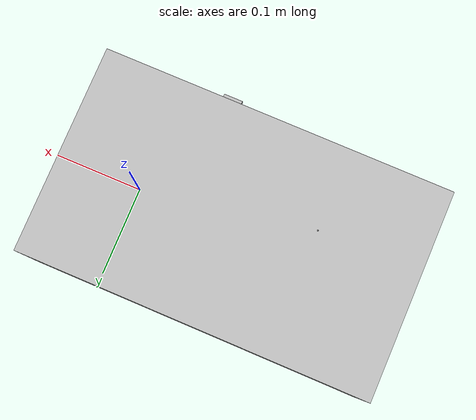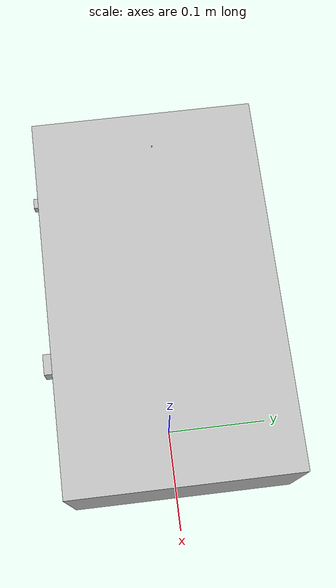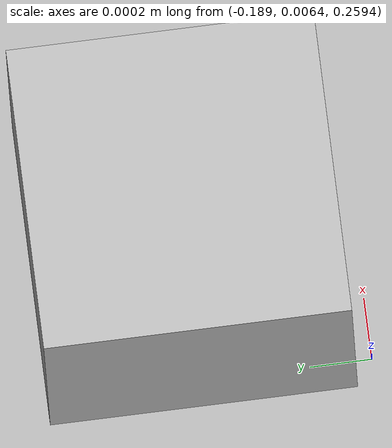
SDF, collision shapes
<?xml version='1.0'?>
<sdf version='1.6'>
  <model name='dr_drift'>
    <link name='chassis'>
      <pose frame=''>0 0 0.06 0 0 0</pose>
      <visual name='visual'>
        <pose frame=''>0 0 0 0 -0 0</pose>
        <geometry>
          <mesh>
            <uri>file://media/dr_drift.stl</uri>
            <scale>1 1 1</scale>
          </mesh>
        </geometry>
      </visual>
      <collision name='collision'>
        <geometry>
          <box>
            <size>0.368 0.218 0.12</size>
          </box>
        </geometry>
      </collision>
    </link>
    <link name='camera_ros::link'>
      <inertial>
        <mass>0.1</mass>
        <inertia>
          <ixx>0.000166667</ixx>
          <iyy>0.000166667</iyy>
          <izz>0.000166667</izz>
          <ixy>0</ixy>
          <ixz>0</ixz>
          <iyz>0</iyz>
        </inertia>
      </inertial>
      <collision name='collision'>
        <geometry>
          <box>
            <size>0.001 0.001 0.001</size>
          </box>
        </geometry>
      </collision>
      <visual name='visual'>
        <geometry>
          <box>
            <size>0.07 0.03 0.03</size>
          </box>
        </geometry>
      </visual>
      <sensor name='camera' type='camera'>
        <camera name='__default__'>
          <horizontal_fov>2.0769</horizontal_fov>
          <image>
            <width>1280</width>
            <height>1024</height>
            <format>RGB8</format>
          </image>
          <clip>
            <near>0.1</near>
            <far>20</far>
          </clip>
        </camera>
        <plugin name='camera_plugin' filename='libgazebo_ros_camera.so'>
          <alwaysOn>1</alwaysOn>
          <updateRate>0.0</updateRate>
          <imageTopicName>/camera/image_uncropped_raw</imageTopicName>
          <pointCloudTopicName>points</pointCloudTopicName>
          <cameraInfoTopicName>/camera/camera_info</cameraInfoTopicName>
          <frameName>world</frameName>
          <pointCloudCutoff>0.5</pointCloudCutoff>
          <distortion_k1>0.0</distortion_k1>
          <distortion_k2>0.0</distortion_k2>
          <distortion_k3>0.0</distortion_k3>
          <distortion_t1>0.0</distortion_t1>
          <distortion_t2>0.0</distortion_t2>
        </plugin>
        <always_on>1</always_on>
        <update_rate>60</update_rate>
        <visualize>1</visualize>
      </sensor>
      <pose frame=''>-0.071762 0 0.26 0 0.161 0</pose>
    </link>
    <joint name='camera_joint' type='fixed'>
      <child>camera_ros::link</child>
      <parent>chassis</parent>
    </joint>
    <link name='depth_camera_ros::link_back'>
      <inertial>
        <mass>0.1</mass>
      </inertial>
      <collision name="collision">
        <geometry>
          <box>
            <size>0.01 0.01 0.01</size>
          </box>
        </geometry>
      </collision>
      <visual name="visual">
        <geometry>
          <box>
          <size>0.02 0.02 0.02</size>
          </box>
        </geometry>
      </visual>
      <sensor name="camera" type="depth">
        <update_rate>20</update_rate>
        <camera>
          <horizontal_fov>0.436</horizontal_fov> <!-- 25 degrees -->
          <image>
            <width>10</width>
            <height>10</height>
            <format>L8</format>
          </image>
          <clip>
            <near>0.01</near>
            <far>2</far>
          </clip>
        </camera>
        <plugin name="camera_plugin" filename="libgazebo_ros_openni_kinect.so">
          <baseline>0.2</baseline>
          <alwaysOn>true</alwaysOn>
          <updateRate>0.0</updateRate>
          <cameraName>camera_ir</cameraName>
          <imageTopicName>/camera/depth_raw/back</imageTopicName>
          <cameraInfoTopicName>/camera/depth_raw/back_info</cameraInfoTopicName>
          <depthImageTopicName>/camera/depth_raw/back</depthImageTopicName>
          <depthImageInfoTopicName>/camera/depth_raw/back_info</depthImageInfoTopicName>
          <pointCloudTopicName>/camera/depth_raw/back_points</pointCloudTopicName>
          <frameName>ir_back</frameName>
          <pointCloudCutoff>0.005</pointCloudCutoff>
          <distortionK1>0</distortionK1>
          <distortionK2>0</distortionK2>
          <distortionK3>0</distortionK3>
          <distortionT1>0</distortionT1>
          <distortionT2>0</distortionT2>
          <CxPrime>0</CxPrime>
          <Cx>0</Cx>
          <Cy>0</Cy>
          <focalLength>0</focalLength>
          <hackBaseline>0</hackBaseline>
        </plugin>
      </sensor>
      <pose frame=''>-0.116762 -0.112 0.08 0 0 -1.570796 </pose>
    </link>
    <joint name='depth_camera_joint_back' type='fixed'>
      <child>depth_camera_ros::link_back</child>
      <parent>chassis</parent>
    </joint>
    <link name='depth_camera_ros::link_middle'>
      <inertial>
        <mass>0.1</mass>
      </inertial>
      <collision name="collision">
        <geometry>
          <box>
            <size>0.01 0.01 0.01</size>
          </box>
        </geometry>
      </collision>
      <visual name="visual">
        <geometry>
          <box>
          <size>0.02 0.02 0.02</size>
          </box>
        </geometry>
      </visual>
      <sensor name="camera" type="depth">
        <update_rate>20</update_rate>
        <camera>
          <horizontal_fov>0.436</horizontal_fov> <!-- 25 degrees -->
          <image>
            <width>10</width>
            <height>10</height>
            <format>L8</format>
          </image>
          <clip>
            <near>0.01</near>
            <far>2</far>
          </clip>
        </camera>
        <plugin name="camera_plugin" filename="libgazebo_ros_openni_kinect.so">
          <baseline>0.2</baseline>
          <alwaysOn>true</alwaysOn>
          <updateRate>0.0</updateRate>
          <cameraName>camera_ir</cameraName>
          <imageTopicName>/camera/depth_raw/middle</imageTopicName>
          <cameraInfoTopicName>/camera/depth_raw/middle_info</cameraInfoTopicName>
          <depthImageTopicName>/camera/depth_raw/middle</depthImageTopicName>
          <depthImageInfoTopicName>/camera/depth_raw/middle_info</depthImageInfoTopicName>
          <pointCloudTopicName>/camera/depth_raw/middle_points</pointCloudTopicName>
          <frameName>ir_middle</frameName>
          <pointCloudCutoff>0.005</pointCloudCutoff>
          <distortionK1>0</distortionK1>
          <distortionK2>0</distortionK2>
          <distortionK3>0</distortionK3>
          <distortionT1>0</distortionT1>
          <distortionT2>0</distortionT2>
          <CxPrime>0</CxPrime>
          <Cx>0</Cx>
          <Cy>0</Cy>
          <focalLength>0</focalLength>
          <hackBaseline>0</hackBaseline>
        </plugin>
      </sensor>
      <pose frame=''>-0.011762 -0.10 0.08 0 0 -1.570796 </pose>
    </link>
    <joint name='depth_camera_joint_middle' type='fixed'>
      <child>depth_camera_ros::link_middle</child>
      <parent>chassis</parent>
    </joint>
    <link name='depth_camera_ros::link_front'>
      <inertial>
        <mass>0.1</mass>
      </inertial>
      <collision name="collision">
        <geometry>
          <box>
            <size>0.02 0.02 0.02</size>
          </box>
        </geometry>
      </collision>
      <visual name="visual">
        <geometry>
          <box>
          <size>0.02 0.02 0.02</size>
          </box>
        </geometry>
      </visual>
      <sensor name="camera" type="depth">
        <update_rate>20</update_rate>
        <camera>
          <horizontal_fov>0.436</horizontal_fov> <!-- 25 degrees -->
          <image>
            <width>10</width>
            <height>10</height>
            <format>L8</format>
          </image>
          <clip>
            <near>0.001</near>
            <far>2</far>
          </clip>
        </camera>
        <plugin name="camera_plugin" filename="libgazebo_ros_openni_kinect.so">
          <baseline>0.2</baseline>
          <alwaysOn>true</alwaysOn>
          <updateRate>0.0</updateRate>
          <cameraName>camera_ir</cameraName>
          <imageTopicName>/camera/depth_raw/front</imageTopicName>
          <cameraInfoTopicName>/camera/depth_raw/front_info</cameraInfoTopicName>
          <depthImageTopicName>/camera/depth_raw/front</depthImageTopicName>
          <depthImageInfoTopicName>/camera/depth_raw/front_info</depthImageInfoTopicName>
          <pointCloudTopicName>/camera/depth_raw/front_points</pointCloudTopicName>
          <frameName>ir_front</frameName>
          <pointCloudCutoff>0.005</pointCloudCutoff>
          <distortionK1>0</distortionK1>
          <distortionK2>0</distortionK2>
          <distortionK3>0</distortionK3>
          <distortionT1>0</distortionT1>
          <distortionT2>0</distortionT2>
          <CxPrime>0</CxPrime>
          <Cx>0</Cx>
          <Cy>0</Cy>
          <focalLength>0</focalLength>
          <hackBaseline>0</hackBaseline>
        </plugin>
      </sensor>
      <pose frame=''>0.052762 -0.11 0.08 0 0 -1.570796 </pose>
    </link>
    <joint name='depth_camera_joint_front' type='fixed'>
      <child>depth_camera_ros::link_front</child>
      <parent>chassis</parent>
    </joint>
    <link name='depth_camera_ros::link_ahead'>
      <inertial>
        <mass>0.1</mass>
      </inertial>
      <collision name="collision">
        <geometry>
          <box>
            <size>0.02 0.02 0.02</size>
          </box>
        </geometry>
      </collision>
      <visual name="visual">
        <geometry>
          <box>
          <size>0.02 0.02 0.02</size>
          </box>
        </geometry>
      </visual>
      <sensor name="camera" type="depth">
        <update_rate>20</update_rate>
        <camera>
          <horizontal_fov>0.436</horizontal_fov> <!-- 25 degrees -->
          <image>
            <width>10</width>
            <height>10</height>
            <format>L8</format>
          </image>
          <clip>
            <near>0.001</near>
            <far>2</far>
          </clip>
        </camera>
        <plugin name="camera_plugin" filename="libgazebo_ros_openni_kinect.so">
          <baseline>0.2</baseline>
          <alwaysOn>true</alwaysOn>
          <updateRate>0.0</updateRate>
          <cameraName>camera_ir</cameraName>
          <imageTopicName>/camera/depth_raw/ahead</imageTopicName>
          <cameraInfoTopicName>/camera/depth_raw/ahead_info</cameraInfoTopicName>
          <depthImageTopicName>/camera/depth_raw/ahead</depthImageTopicName>
          <depthImageInfoTopicName>/camera/depth_raw/ahead_info</depthImageInfoTopicName>
          <pointCloudTopicName>/camera/depth_raw/ahead_points</pointCloudTopicName>
          <frameName>ir_ahead</frameName>
          <pointCloudCutoff>0.005</pointCloudCutoff>
          <distortionK1>0</distortionK1>
          <distortionK2>0</distortionK2>
          <distortionK3>0</distortionK3>
          <distortionT1>0</distortionT1>
          <distortionT2>0</distortionT2>
          <CxPrime>0</CxPrime>
          <Cx>0</Cx>
          <Cy>0</Cy>
          <focalLength>0</focalLength>
          <hackBaseline>0</hackBaseline>
        </plugin>
      </sensor>
      <pose frame=''>0.16962 0 0.08 0 0 0 </pose>
    </link>
    <joint name='depth_camera_joint_ahead' type='fixed'>
      <child>depth_camera_ros::link_ahead</child>
      <parent>chassis</parent>
    </joint>
    <plugin name='vehicle_simulation_link' filename='libvehicle_simulation_link.so' />
    <pose frame=''>-0.116762 0.006958 0 0 -0 0</pose>
    <static>0</static>
    <allow_auto_disable>1</allow_auto_disable>
  </model>
</sdf>
